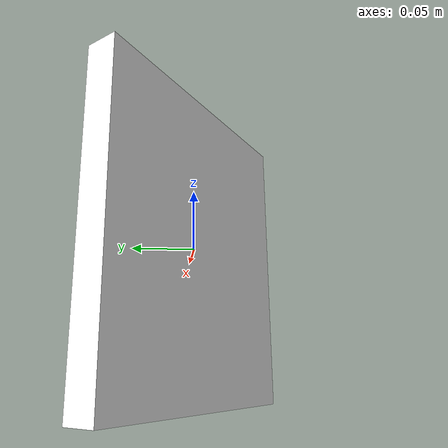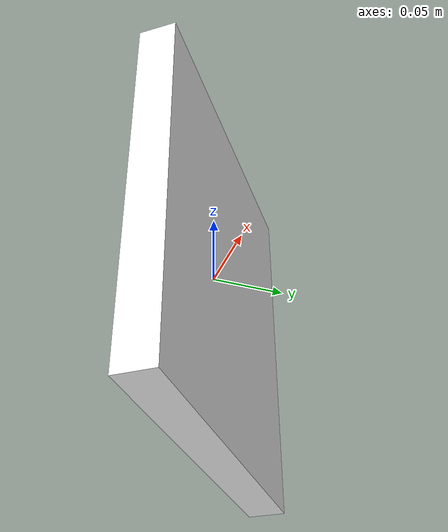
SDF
<?xml version='1.0'?>
<sdf version='1.6'>
  <model name='april_tag_1'>
    <link name='box'>
      <pose frame=''>0 0 0 0 -0 2.46246</pose>
      <self_collide>0</self_collide>
      <kinematic>0</kinematic>
      <visual name='visual'>
        <geometry>
          <box>
            <size>0.224411 0.025 0.25</size>
          </box>
        </geometry>
        <material>
          <script>
            <uri>model://april_tag_1/materials/scripts</uri>
            <uri>model://april_tag_1/materials/textures</uri>
            <name>april_tag_1</name>
          </script>
          <ambient>1 1 1 1</ambient>
          <diffuse>1 1 1 1</diffuse>
          <specular>0 0 0 1</specular>
          <emissive>0 0 0 1</emissive>
        </material>
        <pose frame=''>0 0 0 0 -0 0</pose>
        <cast_shadows>1</cast_shadows>
        <transparency>0</transparency>
      </visual>
      <collision name='collision'>
        <laser_retro>0</laser_retro>
        <max_contacts>10</max_contacts>
        <pose frame=''>0 0 0 0 -0 0</pose>
        <geometry>
          <box>
            <size>0.224411 0.025 0.25</size>
          </box>
        </geometry>
        <surface>
          <friction>
            <ode>
              <mu>1</mu>
              <mu2>1</mu2>
              <fdir1>0 0 0</fdir1>
              <slip1>0</slip1>
              <slip2>0</slip2>
            </ode>
            <torsional>
              <coefficient>1</coefficient>
              <patch_radius>0</patch_radius>
              <surface_radius>0</surface_radius>
              <use_patch_radius>1</use_patch_radius>
              <ode>
                <slip>0</slip>
              </ode>
            </torsional>
          </friction>
          <bounce>
            <restitution_coefficient>0</restitution_coefficient>
            <threshold>1e+06</threshold>
          </bounce>
          <contact>
            <collide_without_contact>0</collide_without_contact>
            <collide_without_contact_bitmask>1</collide_without_contact_bitmask>
            <collide_bitmask>1</collide_bitmask>
            <ode>
              <soft_cfm>0</soft_cfm>
              <soft_erp>0.2</soft_erp>
              <kp>1e+13</kp>
              <kd>1</kd>
              <max_vel>0.01</max_vel>
              <min_depth>0</min_depth>
            </ode>
            <bullet>
              <split_impulse>1</split_impulse>
              <split_impulse_penetration_threshold>-0.01</split_impulse_penetration_threshold>
              <soft_cfm>0</soft_cfm>
              <soft_erp>0.2</soft_erp>
              <kp>1e+13</kp>
              <kd>1</kd>
            </bullet>
          </contact>
        </surface>
      </collision>
    </link>
    <static>1</static>
    <allow_auto_disable>1</allow_auto_disable>
  </model>
</sdf>
